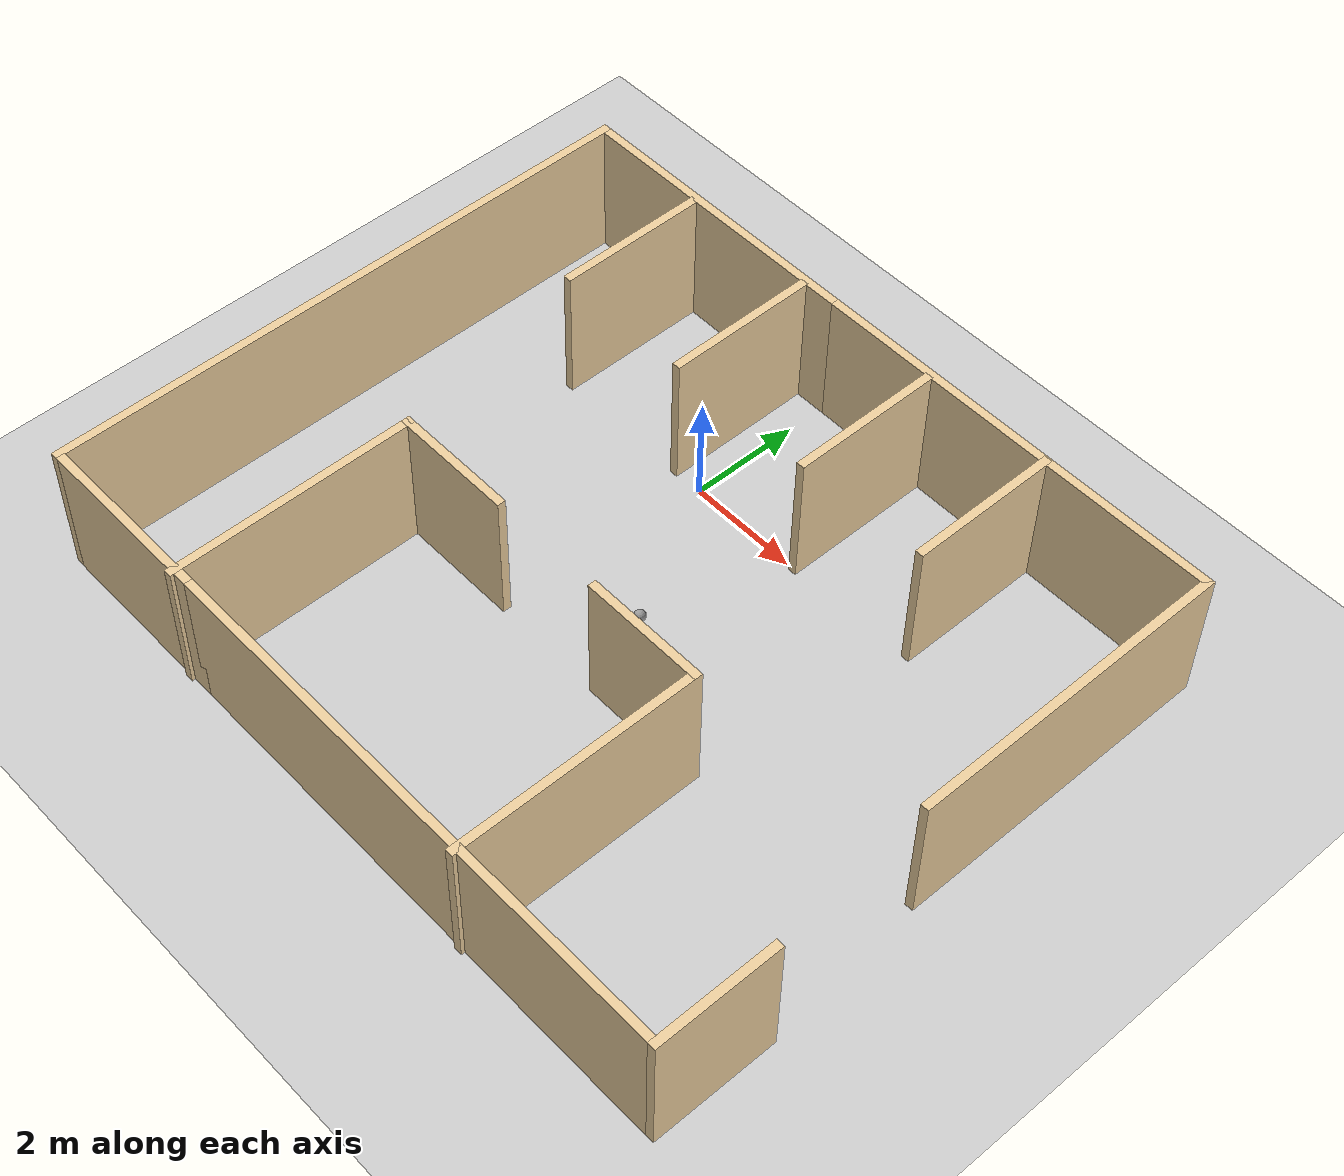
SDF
<sdf version="1.6">
 <world name="default">
  <light name="sun" type="directional">
   <pose>0 0 10 0 -0 0</pose>
   <diffuse>0.8 0.8 0.8 1</diffuse>
   <specular>0.2 0.2 0.2 1</specular>
   <attenuation>
    <range>1000</range>
    <constant>0.9</constant>
    <linear>0.01</linear>
    <quadratic>0.001</quadratic>
   </attenuation>
   <direction>-0.5 0.1 -0.9</direction>
  </light>
  <model name="ground_plane">
   <static>1</static>
   <link name="link">
    <collision name="collision">
     <geometry><plane><normal>0 0 1</normal><size>100 100</size></plane></geometry>
     <surface><friction><ode><mu>100</mu><mu2>50</mu2></ode></friction></surface>
    </collision>
    <visual name="visual">
     <cast_shadows>0</cast_shadows>
     <geometry><plane><normal>0 0 1</normal><size>100 100</size></plane></geometry>
     <material>
      <script><uri>file://media/materials/scripts/gazebo.material</uri><name>Gazebo/Grey</name></script>
     </material>
    </visual>
   </link>
  </model>
  <gravity>0 0 -9.8</gravity>
  <magnetic_field>6e-06 2.3e-05 -4.2e-05</magnetic_field>
  <atmosphere type="adiabatic"/>
  <physics name="default_physics" default="0" type="ode">
   <max_step_size>0.001</max_step_size>
   <real_time_factor>1</real_time_factor>
   <real_time_update_rate>1000</real_time_update_rate>
  </physics>
  <scene><ambient>0.4 0.4 0.4 1</ambient><background>0.7 0.7 0.7 1</background><shadows>1</shadows></scene>
  <spherical_coordinates>
   <surface_model>EARTH_WGS84</surface_model>
   <latitude_deg>0</latitude_deg>
   <longitude_deg>0</longitude_deg>
   <elevation>0</elevation>
   <heading_deg>0</heading_deg>
  </spherical_coordinates>
  <model name="newparking">
   <pose>1.24509 -2.72569 0 0 -0 0</pose>
   <link name="Wall_1">
    <collision name="Wall_1_Collision">
     <geometry><box><size>7.75 0.15 2.5</size></box></geometry>
     <pose>0 0 1.25 0 -0 0</pose>
    </collision>
    <visual name="Wall_1_Visual">
     <pose>0 0 1.25 0 -0 0</pose>
     <geometry><box><size>7.75 0.15 2.5</size></box></geometry>
     <material>
      <script><uri>file://media/materials/scripts/gazebo.material</uri><name>Gazebo/Grey</name></script>
      <ambient>0.921569 0.807843 0.615686 1</ambient>
     </material>
     <meta><layer>0</layer></meta>
    </visual>
    <pose>2.55 5.45854 0 0 -0 0</pose>
   </link>
   <link name="Wall_11">
    <collision name="Wall_11_Collision">
     <geometry><box><size>2.75 0.15 2.5</size></box></geometry>
     <pose>0 0 1.25 0 -0 0</pose>
    </collision>
    <visual name="Wall_11_Visual">
     <pose>0 0 1.25 0 -0 0</pose>
     <geometry><box><size>2.75 0.15 2.5</size></box></geometry>
     <material>
      <script><uri>file://media/materials/scripts/gazebo.material</uri><name>Gazebo/Grey</name></script>
      <ambient>0.921569 0.807843 0.615686 1</ambient>
     </material>
     <meta><layer>0</layer></meta>
    </visual>
    <pose>-4.3486 4.04596 0 0 0 -1.5708</pose>
   </link>
   <link name="Wall_13">
    <collision name="Wall_13_Collision">
     <geometry><box><size>2.75 0.15 2.5</size></box></geometry>
     <pose>0 0 1.25 0 -0 0</pose>
    </collision>
    <visual name="Wall_13_Visual">
     <pose>0 0 1.25 0 -0 0</pose>
     <geometry><box><size>2.75 0.15 2.5</size></box></geometry>
     <material>
      <script><uri>file://media/materials/scripts/gazebo.material</uri><name>Gazebo/Grey</name></script>
      <ambient>0.921569 0.807843 0.615686 1</ambient>
     </material>
     <meta><layer>0</layer></meta>
    </visual>
    <pose>-1.80961 4.04596 0 0 0 -1.5708</pose>
   </link>
   <link name="Wall_15">
    <collision name="Wall_15_Collision">
     <geometry><box><size>2.75 0.15 2.5</size></box></geometry>
     <pose>0 0 1.25 0 -0 0</pose>
    </collision>
    <visual name="Wall_15_Visual">
     <pose>0 0 1.25 0 -0 0</pose>
     <geometry><box><size>2.75 0.15 2.5</size></box></geometry>
     <material>
      <script><uri>file://media/materials/scripts/gazebo.material</uri><name>Gazebo/Grey</name></script>
      <ambient>0.921569 0.807843 0.615686 1</ambient>
     </material>
     <meta><layer>0</layer></meta>
    </visual>
    <pose>0.91292 4.04596 0 0 0 -1.5708</pose>
   </link>
   <link name="Wall_17">
    <collision name="Wall_17_Collision">
     <geometry><box><size>2.75 0.15 2.5</size></box></geometry>
     <pose>0 0 1.25 0 -0 0</pose>
    </collision>
    <visual name="Wall_17_Visual">
     <pose>0 0 1.25 0 -0 0</pose>
     <geometry><box><size>2.75 0.15 2.5</size></box></geometry>
     <material>
      <script><uri>file://media/materials/scripts/gazebo.material</uri><name>Gazebo/Grey</name></script>
      <ambient>0.921569 0.807843 0.615686 1</ambient>
     </material>
     <meta><layer>0</layer></meta>
    </visual>
    <pose>3.26837 4.13773 0 0 0 -1.5708</pose>
   </link>
   <link name="Wall_19">
    <collision name="Wall_19_Collision">
     <geometry><box><size>4.5 0.15 2.5</size></box></geometry>
     <pose>0 0 1.25 0 -0 0</pose>
    </collision>
    <visual name="Wall_19_Visual">
     <pose>0 0 1.25 0 -0 0</pose>
     <geometry><box><size>4.5 0.15 2.5</size></box></geometry>
     <material>
      <script><uri>file://media/materials/scripts/gazebo.material</uri><name>Gazebo/Grey</name></script>
      <ambient>0.921569 0.807843 0.615686 1</ambient>
     </material>
     <meta><layer>0</layer></meta>
    </visual>
    <pose>-3.64502 -3.27739 0 0 -0 1.5708</pose>
   </link>
   <link name="Wall_2">
    <collision name="Wall_2_Collision">
     <geometry><box><size>5.88084 0.15 2.5</size></box></geometry>
     <pose>0 0 1.25 0 -0 0</pose>
    </collision>
    <visual name="Wall_2_Visual">
     <pose>0 0 1.25 0 -0 0</pose>
     <geometry><box><size>5.88084 0.15 2.5</size></box></geometry>
     <material>
      <script><uri>file://media/materials/scripts/gazebo.material</uri><name>Gazebo/Grey</name></script>
      <ambient>0.921569 0.807843 0.615686 1</ambient>
     </material>
     <meta><layer>0</layer></meta>
    </visual>
    <pose>6.38059 2.59316 0 0 0 -1.5708</pose>
   </link>
   <link name="Wall_20">
    <collision name="Wall_20_Collision">
     <geometry><box><size>2.25 0.15 2.5</size></box></geometry>
     <pose>0 0 1.25 0 -0 0</pose>
    </collision>
    <visual name="Wall_20_Visual">
     <pose>0 0 1.25 0 -0 0</pose>
     <geometry><box><size>2.25 0.15 2.5</size></box></geometry>
     <material>
      <script><uri>file://media/materials/scripts/gazebo.material</uri><name>Gazebo/Grey</name></script>
      <ambient>0.921569 0.807843 0.615686 1</ambient>
     </material>
     <meta><layer>0</layer></meta>
    </visual>
    <pose>-2.59502 -1.10239 0 0 -0 0</pose>
   </link>
   <link name="Wall_22">
    <collision name="Wall_22_Collision">
     <geometry><box><size>2.25 0.15 2.5</size></box></geometry>
     <pose>0 0 1.25 0 -0 0</pose>
    </collision>
    <visual name="Wall_22_Visual">
     <pose>0 0 1.25 0 -0 0</pose>
     <geometry><box><size>2.25 0.15 2.5</size></box></geometry>
     <material>
      <script><uri>file://media/materials/scripts/gazebo.material</uri><name>Gazebo/Grey</name></script>
      <ambient>0.921569 0.807843 0.615686 1</ambient>
     </material>
     <meta><layer>0</layer></meta>
    </visual>
    <pose>1.65702 -1.10858 0 0 -0 0</pose>
   </link>
   <link name="Wall_23">
    <collision name="Wall_23_Collision">
     <geometry><box><size>4.5 0.15 2.5</size></box></geometry>
     <pose>0 0 1.25 0 -0 0</pose>
    </collision>
    <visual name="Wall_23_Visual">
     <pose>0 0 1.25 0 -0 0</pose>
     <geometry><box><size>4.5 0.15 2.5</size></box></geometry>
     <material>
      <script><uri>file://media/materials/scripts/gazebo.material</uri><name>Gazebo/Grey</name></script>
      <ambient>0.921569 0.807843 0.615686 1</ambient>
     </material>
     <meta><layer>0</layer></meta>
    </visual>
    <pose>2.70702 -3.28358 0 0 0 -1.5708</pose>
   </link>
   <link name="Wall_4">
    <collision name="Wall_4_Collision">
     <geometry><box><size>5.5 0.15 2.5</size></box></geometry>
     <pose>0 0 1.25 0 -0 0</pose>
    </collision>
    <visual name="Wall_4_Visual">
     <pose>0 0 1.25 0 -0 0</pose>
     <geometry><box><size>5.5 0.15 2.5</size></box></geometry>
     <material>
      <script><uri>file://media/materials/scripts/gazebo.material</uri><name>Gazebo/Grey</name></script>
      <ambient>0.921569 0.807843 0.615686 1</ambient>
     </material>
     <meta><layer>0</layer></meta>
    </visual>
    <pose>-3.925 5.45854 0 0 -0 3.14159</pose>
   </link>
   <link name="Wall_5">
    <collision name="Wall_5_Collision">
     <geometry><box><size>11 0.15 2.5</size></box></geometry>
     <pose>0 0 1.25 0 -0 0</pose>
    </collision>
    <visual name="Wall_5_Visual">
     <pose>0 0 1.25 0 -0 0</pose>
     <geometry><box><size>11 0.15 2.5</size></box></geometry>
     <material>
      <script><uri>file://media/materials/scripts/gazebo.material</uri><name>Gazebo/Grey</name></script>
      <ambient>0.921569 0.807843 0.615686 1</ambient>
     </material>
     <meta><layer>0</layer></meta>
    </visual>
    <pose>-6.6 0.033536 0 0 0 -1.5708</pose>
   </link>
   <link name="Wall_6">
    <collision name="Wall_6_Collision">
     <geometry><box><size>3.5 0.15 2.5</size></box></geometry>
     <pose>0 0 1.25 0 -0 0</pose>
    </collision>
    <visual name="Wall_6_Visual">
     <pose>0 0 1.25 0 -0 0</pose>
     <geometry><box><size>3.5 0.15 2.5</size></box></geometry>
     <material>
      <script><uri>file://media/materials/scripts/gazebo.material</uri><name>Gazebo/Grey</name></script>
      <ambient>0.921569 0.807843 0.615686 1</ambient>
     </material>
     <meta><layer>0</layer></meta>
    </visual>
    <pose>-4.925 -5.39146 0 0 -0 0</pose>
   </link>
   <link name="Wall_7">
    <collision name="Wall_7_Collision">
     <geometry><box><size>10 0.15 2.5</size></box></geometry>
     <pose>0 0 1.25 0 -0 0</pose>
    </collision>
    <visual name="Wall_7_Visual">
     <pose>0 0 1.25 0 -0 0</pose>
     <geometry><box><size>10 0.15 2.5</size></box></geometry>
     <material>
      <script><uri>file://media/materials/scripts/gazebo.material</uri><name>Gazebo/Grey</name></script>
      <ambient>0.921569 0.807843 0.615686 1</ambient>
     </material>
     <meta><layer>0</layer></meta>
    </visual>
    <pose>1.675 -5.39146 0 0 -0 0</pose>
   </link>
   <link name="Wall_8">
    <collision name="Wall_8_Collision">
     <geometry><box><size>2.25 0.15 2.5</size></box></geometry>
     <pose>0 0 1.25 0 -0 0</pose>
    </collision>
    <visual name="Wall_8_Visual">
     <pose>0 0 1.25 0 -0 0</pose>
     <geometry><box><size>2.25 0.15 2.5</size></box></geometry>
     <material>
      <script><uri>file://media/materials/scripts/gazebo.material</uri><name>Gazebo/Grey</name></script>
      <ambient>0.921569 0.807843 0.615686 1</ambient>
     </material>
     <meta><layer>0</layer></meta>
    </visual>
    <pose>6.6 -4.34146 0 0 -0 1.5708</pose>
   </link>
   <static>1</static>
  </model>
  <model name="myball">
   <link name="link_0">
    <inertial>
     <mass>1</mass>
     <inertia><ixx>0.1</ixx><ixy>0</ixy><ixz>0</ixz><iyy>0.1</iyy><iyz>0</iyz><izz>0.1</izz></inertia>
    </inertial>
    <visual name="visual">
     <geometry><sphere><radius>0.1</radius></sphere></geometry>
     <material>
      <lighting>1</lighting>
      <script><uri>file://media/materials/scripts/gazebo.material</uri><name>Gazebo/Grey</name></script>
      <ambient>1 1 1 1</ambient>
      <diffuse>1 1 1 1</diffuse>
      <specular>1 1 1 1</specular>
      <emissive>1 1 1 1</emissive>
      <shader type="vertex"><normal_map>__default__</normal_map></shader>
     </material>
    </visual>
    <collision name="collision">
     <geometry><sphere><radius>0.1</radius></sphere></geometry>
     <surface>
      <friction>
       <ode><mu>1</mu><mu2>1</mu2><fdir1>0 0 0</fdir1><slip1>0</slip1><slip2>0</slip2></ode>
       <torsional>
        <coefficient>1</coefficient>
        <patch_radius>0</patch_radius>
        <surface_radius>0</surface_radius>
        <use_patch_radius>1</use_patch_radius>
        <ode><slip>0</slip></ode>
       </torsional>
      </friction>
      <bounce><restitution_coefficient>0</restitution_coefficient><threshold>1e+06</threshold></bounce>
      <contact>
       <collide_without_contact>0</collide_without_contact>
       <collide_without_contact_bitmask>1</collide_without_contact_bitmask>
       <collide_bitmask>1</collide_bitmask>
       <ode>
        <soft_cfm>0</soft_cfm>
        <soft_erp>0.2</soft_erp>
        <kp>1e+13</kp>
        <kd>1</kd>
        <max_vel>0.01</max_vel>
        <min_depth>0</min_depth>
       </ode>
       <bullet>
        <split_impulse>1</split_impulse>
        <split_impulse_penetration_threshold>-0.01</split_impulse_penetration_threshold>
        <soft_cfm>0</soft_cfm>
        <soft_erp>0.2</soft_erp>
        <kp>1e+13</kp>
        <kd>1</kd>
       </bullet>
      </contact>
     </surface>
    </collision>
   </link>
   <static>0</static>
   <pose>1.51639 -2.65547 0.5 0 -0 0</pose>
  </model>
 </world>
</sdf>
